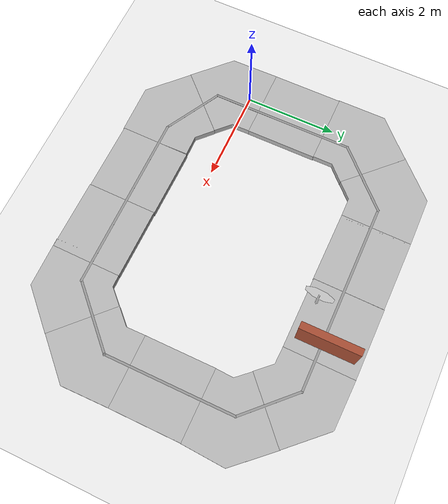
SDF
<sdf version="1.6">
 <world name="default">
  <light name="sun" type="directional">
   <pose>0 0 10 0 -0 0</pose>
   <diffuse>0.8 0.8 0.8 1</diffuse>
   <specular>0.2 0.2 0.2 1</specular>
   <attenuation>
    <range>1000</range>
    <constant>0.9</constant>
    <linear>0.01</linear>
    <quadratic>0.001</quadratic>
   </attenuation>
   <direction>-0.5 0.1 -0.9</direction>
   <spot><inner_angle>0</inner_angle><outer_angle>0</outer_angle><falloff>0</falloff></spot>
  </light>
  <model name="ground_plane">
   <static>1</static>
   <link name="link">
    <collision name="collision">
     <geometry><plane><normal>0 0 1</normal><size>100 100</size></plane></geometry>
     <surface><friction><ode><mu>100</mu><mu2>50</mu2></ode></friction></surface>
    </collision>
    <visual name="visual">
     <cast_shadows>0</cast_shadows>
     <geometry><plane><normal>0 0 1</normal><size>100 100</size></plane></geometry>
     <material>
      <script><uri>file://media/materials/scripts/gazebo.material</uri><name>Gazebo/Grey</name></script>
     </material>
    </visual>
   </link>
  </model>
  <gravity>0 0 -9.8</gravity>
  <magnetic_field>6e-06 2.3e-05 -4.2e-05</magnetic_field>
  <atmosphere type="adiabatic"/>
  <physics type="ode">
   <max_step_size>0.001</max_step_size>
   <real_time_factor>1</real_time_factor>
   <real_time_update_rate>1000</real_time_update_rate>
  </physics>
  <scene><ambient>0.4 0.4 0.4 1</ambient><background>0.7 0.7 0.7 1</background><shadows>1</shadows></scene>
  <audio><device>default</device></audio>
  <spherical_coordinates>
   <surface_model>EARTH_WGS84</surface_model>
   <latitude_deg>0</latitude_deg>
   <longitude_deg>0</longitude_deg>
   <elevation>0</elevation>
   <heading_deg>0</heading_deg>
  </spherical_coordinates>
  <model name="walkway_metal_45">
   <static>1</static>
   <link name="link">
    <collision name="collision">
     <pose>0 0.538815 0.076075 0 -0 0</pose>
     <geometry><box><size>1.524 1.07763 0.15215</size></box></geometry>
    </collision>
    <collision name="collision2">
     <pose>0.15793 0.92 0.076075 0 0 -0.785398</pose>
     <geometry><box><size>1.524 1.07763 0.15215</size></box></geometry>
    </collision>
    <visual name="visual">
     <geometry>
      <mesh><scale>0.001 0.001 0.001</scale><uri>model://walkway_metal_45/meshes/mesh.obj</uri></mesh>
     </geometry>
    </visual>
   </link>
   <pose>0.039946 1.84492 0 0 -0 0</pose>
  </model>
  <model name="walkway_metal_straight">
   <static>1</static>
   <link name="link">
    <collision name="collision">
     <pose>0 0.762 0.076075 0 -0 0</pose>
     <geometry><box><size>1.524 1.524 0.15215</size></box></geometry>
    </collision>
    <visual name="visual">
     <geometry>
      <mesh><scale>0.001 0.001 0.001</scale><uri>model://walkway_metal_straight/meshes/mesh.obj</uri></mesh>
     </geometry>
    </visual>
   </link>
   <pose>0.052529 0.336197 0 0 -0 0</pose>
  </model>
  <model name="walkway_metal_45_0">
   <static>1</static>
   <link name="link">
    <collision name="collision">
     <pose>0 0.538815 0.076075 0 -0 0</pose>
     <geometry><box><size>1.524 1.07763 0.15215</size></box></geometry>
    </collision>
    <collision name="collision2">
     <pose>0.15793 0.92 0.076075 0 0 -0.785398</pose>
     <geometry><box><size>1.524 1.07763 0.15215</size></box></geometry>
    </collision>
    <visual name="visual">
     <geometry>
      <mesh><scale>0.001 0.001 0.001</scale><uri>model://walkway_metal_45/meshes/mesh.obj</uri></mesh>
     </geometry>
    </visual>
   </link>
   <pose>0.558169 3.13136 0 0 0 -0.7774</pose>
  </model>
  <model name="walkway_metal_straight_0_clone">
   <static>1</static>
   <link name="link">
    <collision name="collision">
     <pose>0 0.762 0.076075 0 -0 0</pose>
     <geometry><box><size>1.524 1.524 0.15215</size></box></geometry>
    </collision>
    <visual name="visual">
     <geometry>
      <mesh><scale>0.001 0.001 0.001</scale><uri>model://walkway_metal_straight/meshes/mesh.obj</uri></mesh>
     </geometry>
    </visual>
   </link>
   <pose>1.8179 3.68029 0 0 0 -1.58019</pose>
  </model>
  <model name="walkway_metal_straight_0_clone_clone">
   <static>1</static>
   <link name="link">
    <collision name="collision">
     <pose>0 0.762 0.076075 0 -0 0</pose>
     <geometry><box><size>1.524 1.524 0.15215</size></box></geometry>
    </collision>
    <visual name="visual">
     <geometry>
      <mesh><scale>0.001 0.001 0.001</scale><uri>model://walkway_metal_straight/meshes/mesh.obj</uri></mesh>
     </geometry>
    </visual>
   </link>
   <pose>3.34355 3.67325 0 0 0 -1.58019</pose>
  </model>
  <model name="walkway_metal_45_clone">
   <static>1</static>
   <link name="link">
    <collision name="collision">
     <pose>0 0.538815 0.076075 0 -0 0</pose>
     <geometry><box><size>1.524 1.07763 0.15215</size></box></geometry>
    </collision>
    <collision name="collision2">
     <pose>0.15793 0.92 0.076075 0 0 -0.785398</pose>
     <geometry><box><size>1.524 1.07763 0.15215</size></box></geometry>
    </collision>
    <visual name="visual">
     <geometry>
      <mesh><scale>0.001 0.001 0.001</scale><uri>model://walkway_metal_45/meshes/mesh.obj</uri></mesh>
     </geometry>
    </visual>
   </link>
   <pose>4.8138 3.66195 0 0 0 -1.60358</pose>
  </model>
  <model name="walkway_metal_45_clone_clone">
   <static>1</static>
   <link name="link">
    <collision name="collision">
     <pose>0 0.538815 0.076075 0 -0 0</pose>
     <geometry><box><size>1.524 1.07763 0.15215</size></box></geometry>
    </collision>
    <collision name="collision2">
     <pose>0.15793 0.92 0.076075 0 0 -0.785398</pose>
     <geometry><box><size>1.524 1.07763 0.15215</size></box></geometry>
    </collision>
    <visual name="visual">
     <geometry>
      <mesh><scale>0.001 0.001 0.001</scale><uri>model://walkway_metal_45/meshes/mesh.obj</uri></mesh>
     </geometry>
    </visual>
   </link>
   <pose>6.0712 3.11636 0 0 0 -2.4069</pose>
  </model>
  <model name="walkway_metal_straight_clone">
   <static>1</static>
   <link name="link">
    <collision name="collision">
     <pose>0 0.762 0.076075 0 -0 0</pose>
     <geometry><box><size>1.524 1.524 0.15215</size></box></geometry>
    </collision>
    <visual name="visual">
     <geometry>
      <mesh><scale>0.001 0.001 0.001</scale><uri>model://walkway_metal_straight/meshes/mesh.obj</uri></mesh>
     </geometry>
    </visual>
   </link>
   <pose>6.54555 0.368922 0 0 -0 0</pose>
  </model>
  <model name="walkway_metal_45_clone_clone_clone">
   <static>1</static>
   <link name="link">
    <collision name="collision">
     <pose>0 0.538815 0.076075 0 -0 0</pose>
     <geometry><box><size>1.524 1.07763 0.15215</size></box></geometry>
    </collision>
    <collision name="collision2">
     <pose>0.15793 0.92 0.076075 0 0 -0.785398</pose>
     <geometry><box><size>1.524 1.07763 0.15215</size></box></geometry>
    </collision>
    <visual name="visual">
     <geometry>
      <mesh><scale>0.001 0.001 0.001</scale><uri>model://walkway_metal_45/meshes/mesh.obj</uri></mesh>
     </geometry>
    </visual>
   </link>
   <pose>6.54388 0.411478 0 0 0 -3.12675</pose>
  </model>
  <model name="walkway_metal_45_clone_clone_clone_clone">
   <static>1</static>
   <link name="link">
    <collision name="collision">
     <pose>0 0.538815 0.076075 0 -0 0</pose>
     <geometry><box><size>1.524 1.07763 0.15215</size></box></geometry>
    </collision>
    <collision name="collision2">
     <pose>0.15793 0.92 0.076075 0 0 -0.785398</pose>
     <geometry><box><size>1.524 1.07763 0.15215</size></box></geometry>
    </collision>
    <visual name="visual">
     <geometry>
      <mesh><scale>0.001 0.001 0.001</scale><uri>model://walkway_metal_45/meshes/mesh.obj</uri></mesh>
     </geometry>
    </visual>
   </link>
   <pose>6.03936 -0.887475 0 0 -0 2.36944</pose>
  </model>
  <model name="walkway_metal_straight_0_clone_clone_0">
   <static>1</static>
   <link name="link">
    <collision name="collision">
     <pose>0 0.762 0.076075 0 -0 0</pose>
     <geometry><box><size>1.524 1.524 0.15215</size></box></geometry>
    </collision>
    <visual name="visual">
     <geometry>
      <mesh><scale>0.001 0.001 0.001</scale><uri>model://walkway_metal_straight/meshes/mesh.obj</uri></mesh>
     </geometry>
    </visual>
   </link>
   <pose>3.39531 -1.42211 0 0 0 -1.58019</pose>
  </model>
  <model name="walkway_metal_straight_0_clone_clone_1">
   <static>1</static>
   <link name="link">
    <collision name="collision">
     <pose>0 0.762 0.076075 0 -0 0</pose>
     <geometry><box><size>1.524 1.524 0.15215</size></box></geometry>
    </collision>
    <visual name="visual">
     <geometry>
      <mesh><scale>0.001 0.001 0.001</scale><uri>model://walkway_metal_straight/meshes/mesh.obj</uri></mesh>
     </geometry>
    </visual>
   </link>
   <pose>1.89607 -1.39704 0 0 0 -1.58019</pose>
  </model>
  <model name="walkway_metal_45_clone_clone_clone_0">
   <static>1</static>
   <link name="link">
    <collision name="collision">
     <pose>0 0.538815 0.076075 0 -0 0</pose>
     <geometry><box><size>1.524 1.07763 0.15215</size></box></geometry>
    </collision>
    <collision name="collision2">
     <pose>0.15793 0.92 0.076075 0 0 -0.785398</pose>
     <geometry><box><size>1.524 1.07763 0.15215</size></box></geometry>
    </collision>
    <visual name="visual">
     <geometry>
      <mesh><scale>0.001 0.001 0.001</scale><uri>model://walkway_metal_45/meshes/mesh.obj</uri></mesh>
     </geometry>
    </visual>
   </link>
   <pose>0.604617 -0.914092 -0.004449 0 -0 0.799615</pose>
  </model>
  <model name="walkway_metal_45_clone_clone_clone_0_clone">
   <static>1</static>
   <link name="link">
    <collision name="collision">
     <pose>0 0.538815 0.076075 0 -0 0</pose>
     <geometry><box><size>1.524 1.07763 0.15215</size></box></geometry>
    </collision>
    <collision name="collision2">
     <pose>0.15793 0.92 0.076075 0 0 -0.785398</pose>
     <geometry><box><size>1.524 1.07763 0.15215</size></box></geometry>
    </collision>
    <visual name="visual">
     <geometry>
      <mesh><scale>0.001 0.001 0.001</scale><uri>model://walkway_metal_45/meshes/mesh.obj</uri></mesh>
     </geometry>
    </visual>
   </link>
   <pose>1.90102 -1.40936 -0.000319 0 -0 1.58501</pose>
  </model>
  <light name="user_directional_light_0" type="directional">
   <pose>3.64183 3.44264 1 0 -0 0</pose>
   <diffuse>0.5 0.5 0.5 1</diffuse>
   <specular>0.1 0.1 0.1 1</specular>
   <direction>0.1 0.1 -0.9</direction>
   <attenuation>
    <range>20</range>
    <constant>0.5</constant>
    <linear>0.01</linear>
    <quadratic>0.001</quadratic>
   </attenuation>
   <spot><inner_angle>0</inner_angle><outer_angle>0</outer_angle><falloff>0</falloff></spot>
  </light>
  <light name="user_point_light_0" type="point">
   <pose>3.42599 1.069 1 0 -0 0</pose>
   <diffuse>0.5 0.5 0.5 1</diffuse>
   <specular>0.1 0.1 0.1 1</specular>
   <attenuation>
    <range>20</range>
    <constant>0.5</constant>
    <linear>0.01</linear>
    <quadratic>0.001</quadratic>
   </attenuation>
   <cast_shadows>0</cast_shadows>
   <direction>0 0 -1</direction>
   <spot><inner_angle>0</inner_angle><outer_angle>0</outer_angle><falloff>0</falloff></spot>
  </light>
  <light name="user_directional_light_1" type="directional">
   <pose>1.63124 3.3884 1 0 -0 0</pose>
   <diffuse>0.5 0.5 0.5 1</diffuse>
   <specular>0.1 0.1 0.1 1</specular>
   <direction>0.1 0.1 -0.9</direction>
   <attenuation>
    <range>20</range>
    <constant>0.5</constant>
    <linear>0.01</linear>
    <quadratic>0.001</quadratic>
   </attenuation>
   <spot><inner_angle>0</inner_angle><outer_angle>0</outer_angle><falloff>0</falloff></spot>
  </light>
  <light name="user_directional_light_2" type="directional">
   <pose>5.5294 3.06255 1 0 -0 0</pose>
   <diffuse>0.5 0.5 0.5 1</diffuse>
   <specular>0.1 0.1 0.1 1</specular>
   <direction>0.1 0.1 -0.9</direction>
   <attenuation>
    <range>20</range>
    <constant>0.5</constant>
    <linear>0.01</linear>
    <quadratic>0.001</quadratic>
   </attenuation>
   <spot><inner_angle>0</inner_angle><outer_angle>0</outer_angle><falloff>0</falloff></spot>
  </light>
  <light name="user_directional_light_3" type="directional">
   <pose>5.71497 3.10816 1 0 -0 0</pose>
   <diffuse>0.5 0.5 0.5 1</diffuse>
   <specular>0.1 0.1 0.1 1</specular>
   <direction>0.1 0.1 -0.9</direction>
   <attenuation>
    <range>20</range>
    <constant>0.5</constant>
    <linear>0.01</linear>
    <quadratic>0.001</quadratic>
   </attenuation>
   <spot><inner_angle>0</inner_angle><outer_angle>0</outer_angle><falloff>0</falloff></spot>
  </light>
  <light name="user_directional_light_4" type="directional">
   <pose>6.06108 0.641437 1 0 -0 0</pose>
   <diffuse>0.5 0.5 0.5 1</diffuse>
   <specular>0.1 0.1 0.1 1</specular>
   <direction>0.1 0.1 -0.9</direction>
   <attenuation>
    <range>20</range>
    <constant>0.5</constant>
    <linear>0.01</linear>
    <quadratic>0.001</quadratic>
   </attenuation>
   <spot><inner_angle>0</inner_angle><outer_angle>0</outer_angle><falloff>0</falloff></spot>
  </light>
  <light name="user_directional_light_5" type="directional">
   <pose>4.76589 -1.41767 1 0 -0 0</pose>
   <diffuse>0.5 0.5 0.5 1</diffuse>
   <specular>0.1 0.1 0.1 1</specular>
   <direction>0.1 0.1 -0.9</direction>
   <attenuation>
    <range>20</range>
    <constant>0.5</constant>
    <linear>0.01</linear>
    <quadratic>0.001</quadratic>
   </attenuation>
   <spot><inner_angle>0</inner_angle><outer_angle>0</outer_angle><falloff>0</falloff></spot>
  </light>
  <light name="user_directional_light_6" type="directional">
   <pose>2.2567 -1.28573 1 0 -0 0</pose>
   <diffuse>0.5 0.5 0.5 1</diffuse>
   <specular>0.1 0.1 0.1 1</specular>
   <direction>0.1 0.1 -0.9</direction>
   <attenuation>
    <range>20</range>
    <constant>0.5</constant>
    <linear>0.01</linear>
    <quadratic>0.001</quadratic>
   </attenuation>
   <spot><inner_angle>0</inner_angle><outer_angle>0</outer_angle><falloff>0</falloff></spot>
  </light>
  <light name="user_directional_light_7" type="directional">
   <pose>0.011141 -0.179236 1 0 -0 0</pose>
   <diffuse>0.5 0.5 0.5 1</diffuse>
   <specular>0.1 0.1 0.1 1</specular>
   <direction>0.1 0.1 -0.9</direction>
   <attenuation>
    <range>20</range>
    <constant>0.5</constant>
    <linear>0.01</linear>
    <quadratic>0.001</quadratic>
   </attenuation>
   <spot><inner_angle>0</inner_angle><outer_angle>0</outer_angle><falloff>0</falloff></spot>
  </light>
  <model name="mypath">
   <pose>3.28534 1.12859 0.144665 0 -0 0</pose>
   <link name="Wall_10">
    <collision name="Wall_10_Collision">
     <geometry><box><size>2.847 0.05 0.008</size></box></geometry>
     <pose>0 0 0.004 0 -0 0</pose>
    </collision>
    <visual name="Wall_10_Visual">
     <pose>0 0 0.004 0 -0 0</pose>
     <geometry><box><size>2.847 0.05 0.008</size></box></geometry>
     <material>
      <script><uri>file://media/materials/scripts/gazebo.material</uri><name>Gazebo/Grey</name></script>
      <ambient>1 1 1 1</ambient>
     </material>
     <meta><layer>0</layer></meta>
    </visual>
    <pose>3.15832 0.0885 0 0 -0 1.57115</pose>
   </link>
   <link name="Wall_15">
    <collision name="Wall_15_Collision">
     <geometry><box><size>1.3907 0.05 0.008</size></box></geometry>
     <pose>0 0 0.004 0 -0 0</pose>
    </collision>
    <visual name="Wall_15_Visual">
     <pose>0 0 0.004 0 -0 0</pose>
     <geometry><box><size>1.3907 0.05 0.008</size></box></geometry>
     <material>
      <script><uri>file://media/materials/scripts/gazebo.material</uri><name>Gazebo/Grey</name></script>
      <ambient>1 1 1 1</ambient>
     </material>
     <meta><layer>0</layer></meta>
    </visual>
    <pose>2.68682 1.964 0 0 -0 2.34986</pose>
   </link>
   <link name="Wall_16">
    <collision name="Wall_16_Collision">
     <geometry><box><size>4.15 0.05 0.008</size></box></geometry>
     <pose>0 0 0.004 0 -0 0</pose>
    </collision>
    <visual name="Wall_16_Visual">
     <pose>0 0 0.004 0 -0 0</pose>
     <geometry><box><size>4.15 0.05 0.008</size></box></geometry>
     <material>
      <script><uri>file://media/materials/scripts/gazebo.material</uri><name>Gazebo/Grey</name></script>
      <ambient>1 1 1 1</ambient>
     </material>
     <meta><layer>0</layer></meta>
    </visual>
    <pose>0.165822 2.441 0 0 -0 3.14159</pose>
   </link>
   <link name="Wall_17">
    <collision name="Wall_17_Collision">
     <geometry><box><size>1.63253 0.05 0.008</size></box></geometry>
     <pose>0 0 0.004 0 -0 0</pose>
    </collision>
    <visual name="Wall_17_Visual">
     <pose>0 0 0.004 0 -0 0</pose>
     <geometry><box><size>1.63253 0.05 0.008</size></box></geometry>
     <material>
      <script><uri>file://media/materials/scripts/gazebo.material</uri><name>Gazebo/Grey</name></script>
      <ambient>1 1 1 1</ambient>
     </material>
     <meta><layer>0</layer></meta>
    </visual>
    <pose>-2.44068 1.8785 0 0 -0 -2.35083</pose>
   </link>
   <link name="Wall_18">
    <collision name="Wall_18_Collision">
     <geometry><box><size>3.15 0.05 0.008</size></box></geometry>
     <pose>0 0 0.004 0 -0 0</pose>
    </collision>
    <visual name="Wall_18_Visual">
     <pose>0 0 0.004 0 -0 0</pose>
     <geometry><box><size>3.15 0.05 0.008</size></box></geometry>
     <material>
      <script><uri>file://media/materials/scripts/gazebo.material</uri><name>Gazebo/Grey</name></script>
      <ambient>1 1 1 1</ambient>
     </material>
     <meta><layer>0</layer></meta>
    </visual>
    <pose>-2.99718 -0.234 0 0 -0 -1.5708</pose>
   </link>
   <link name="Wall_19">
    <collision name="Wall_19_Collision">
     <geometry><box><size>1.40582 0.05 0.008</size></box></geometry>
     <pose>0 0 0.004 0 -0 0</pose>
    </collision>
    <visual name="Wall_19_Visual">
     <pose>0 0 0.004 0 -0 0</pose>
     <geometry><box><size>1.40582 0.05 0.008</size></box></geometry>
     <material>
      <script><uri>file://media/materials/scripts/gazebo.material</uri><name>Gazebo/Grey</name></script>
      <ambient>1 1 1 1</ambient>
     </material>
     <meta><layer>0</layer></meta>
    </visual>
    <pose>-2.40418 -2.1125 0 0 -0 -0.505881</pose>
   </link>
   <link name="Wall_5">
    <collision name="Wall_5_Collision">
     <geometry><box><size>3.9 0.05 0.008</size></box></geometry>
     <pose>0 0 0.004 0 -0 0</pose>
    </collision>
    <visual name="Wall_5_Visual">
     <pose>0 0 0.004 0 -0 0</pose>
     <geometry><box><size>3.9 0.05 0.008</size></box></geometry>
     <material>
      <script><uri>file://media/materials/scripts/gazebo.material</uri><name>Gazebo/Grey</name></script>
      <ambient>1 1 1 1</ambient>
     </material>
     <meta><layer>0</layer></meta>
    </visual>
    <pose>0.113822 -2.441 0 0 -0 0</pose>
   </link>
   <link name="Wall_9">
    <collision name="Wall_9_Collision">
     <geometry><box><size>1.64172 0.05 0.008</size></box></geometry>
     <pose>0 0 0.004 0 -0 0</pose>
    </collision>
    <visual name="Wall_9_Visual">
     <pose>0 0 0.004 0 -0 0</pose>
     <geometry><box><size>1.64172 0.05 0.008</size></box></geometry>
     <material>
      <script><uri>file://media/materials/scripts/gazebo.material</uri><name>Gazebo/Grey</name></script>
      <ambient>1 1 1 1</ambient>
     </material>
     <meta><layer>0</layer></meta>
    </visual>
    <pose>2.59882 -1.8755 0 0 -0 0.790285</pose>
   </link>
   <static>1</static>
  </model>
  <model name="Stop Sign_clone">
   <static>1</static>
   <link name="link">
    <collision name="collision">
     <geometry><mesh><uri>model://stop_sign/meshes/stop_sign.dae</uri></mesh></geometry>
    </collision>
    <visual name="visual">
     <geometry><mesh><uri>model://stop_sign/meshes/stop_sign.dae</uri></mesh></geometry>
     <material>
      <script>
       <uri>model://stop_sign/materials/scripts</uri>
       <uri>model://stop_sign/materials/textures</uri>
       <name>StopSign/Diffuse</name>
      </script>
     </material>
    </visual>
   </link>
   <pose>3.79229 3.14613 -0.762556 0 0 -1.62536</pose>
  </model>
  <model name="stop_wall">
   <pose>2.30275 2.14073 0 0 -0 0</pose>
   <link name="Wall_2">
    <collision name="Wall_2_Collision">
     <geometry><box><size>1.25 0.15 1</size></box></geometry>
     <pose>0 0 0.5 0 -0 0</pose>
    </collision>
    <visual name="Wall_2_Visual">
     <pose>0 0 0.5 0 -0 0</pose>
     <geometry><box><size>1.25 0.15 1</size></box></geometry>
     <material>
      <script><uri>file://media/materials/scripts/gazebo.material</uri><name>Gazebo/Bricks</name></script>
      <ambient>1 1 1 1</ambient>
     </material>
     <meta><layer>0</layer></meta>
    </visual>
    <pose>2.22775 1.51573 0 0 -0 -1.5708</pose>
   </link>
   <static>1</static>
  </model>
 </world>
</sdf>
